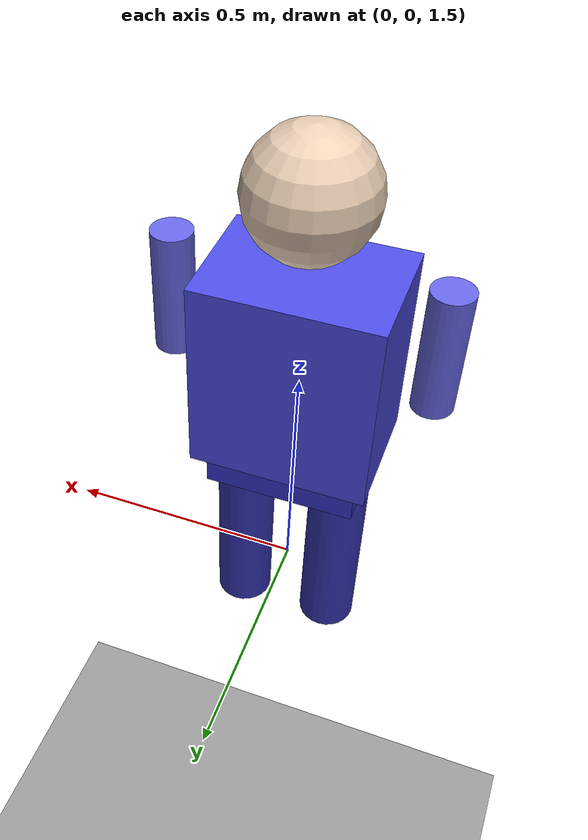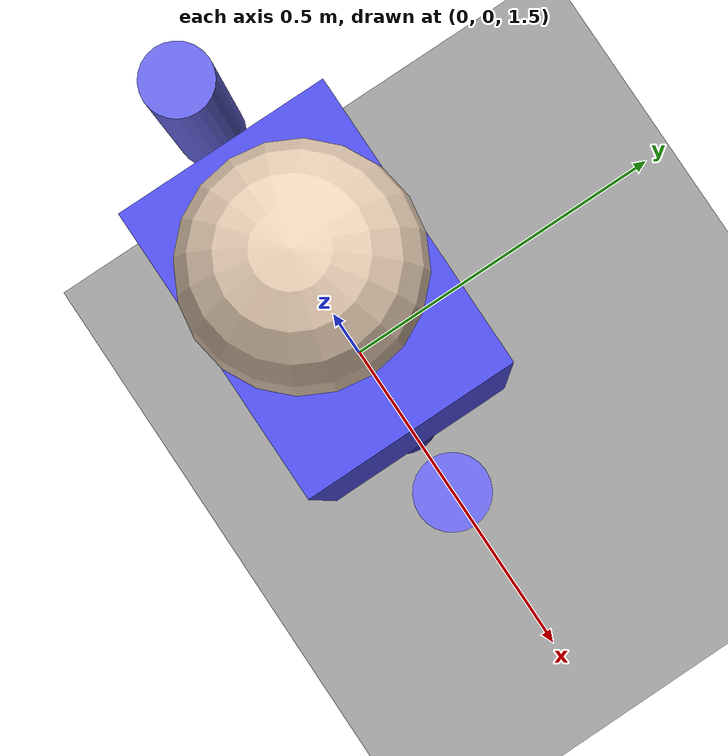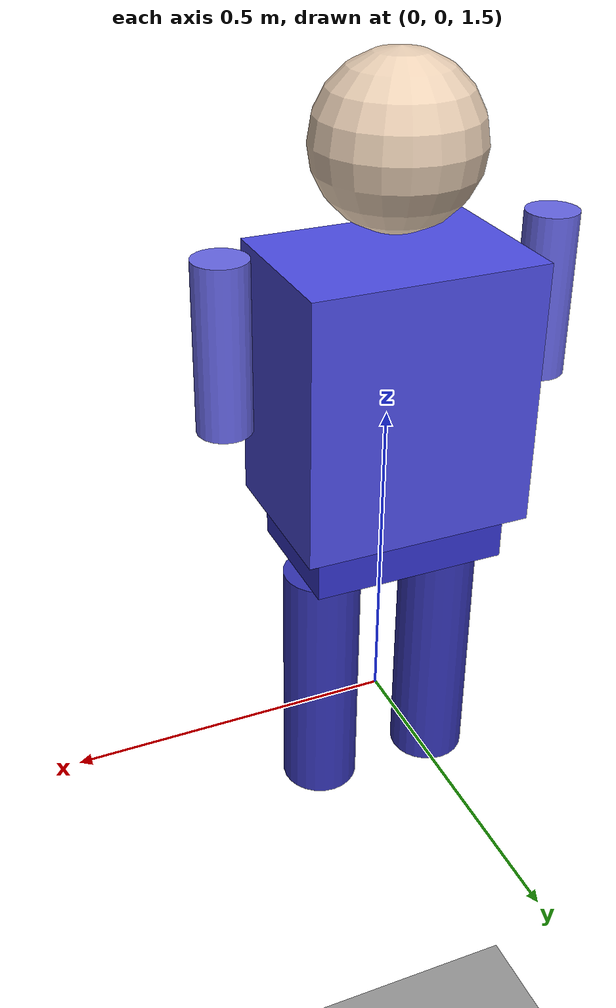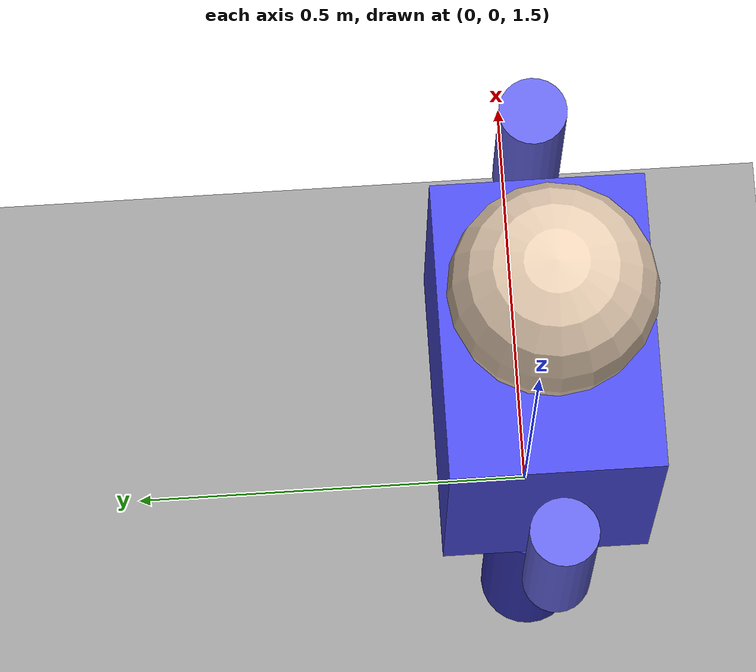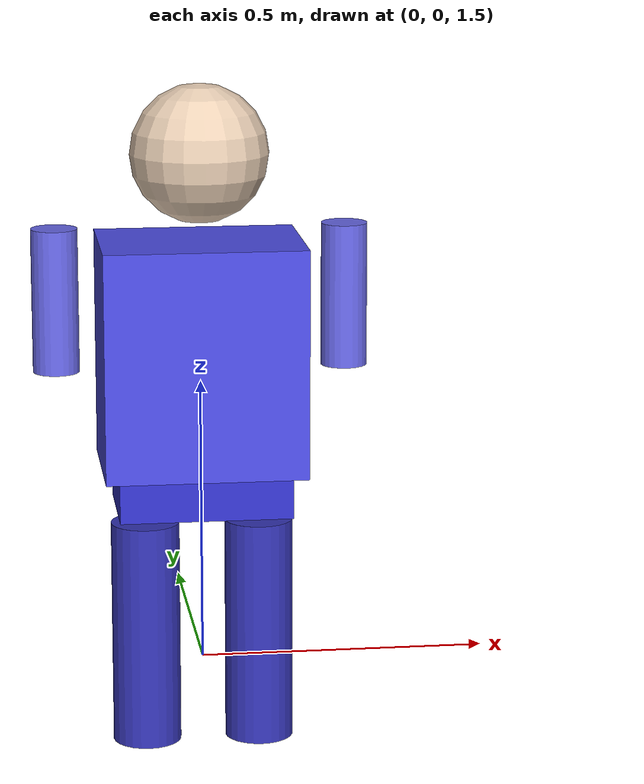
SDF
<?xml version="1.0" ?>
<sdf version="1.10">
  <world name="humanoid_world">

    <physics type="ode">
      <max_step_size>0.001</max_step_size>
      <real_time_factor>1.0</real_time_factor>
      <real_time_update_rate>1000</real_time_update_rate>
      <ode>
        <solver>
          <type>quick</type>
          <iters>100</iters>  <!-- Higher iterations for humanoid stability -->
          <sor>1.3</sor>
        </solver>
        <constraints>
          <cfm>0</cfm>
          <erp>0.2</erp>
          <contact_max_correcting_vel>100</contact_max_correcting_vel>
          <contact_surface_layer>0.001</contact_surface_layer>
        </constraints>
      </ode>
    </physics>

    <gravity>0 0 -9.81</gravity>

    <!-- Lighting -->
    <light type="directional" name="sun">
      <cast_shadows>true</cast_shadows>
      <pose>0 0 10 0 0 0</pose>
      <diffuse>0.8 0.8 0.8 1</diffuse>
      <specular>0.2 0.2 0.2 1</specular>
      <direction>-0.5 0.1 -0.9</direction>
    </light>

    <!-- Ambient light for better visibility -->
    <light type="point" name="ambient_1">
      <pose>3 3 5 0 0 0</pose>
      <diffuse>0.3 0.3 0.3 1</diffuse>
      <specular>0.1 0.1 0.1 1</specular>
      <attenuation>
        <range>20</range>
        <constant>0.5</constant>
        <linear>0.01</linear>
        <quadratic>0.001</quadratic>
      </attenuation>
    </light>

    <!-- Ground Plane with friction for walking -->
    <model name="ground_plane">
      <static>true</static>
      <link name="link">
        <collision name="collision">
          <geometry>
            <plane>
              <normal>0 0 1</normal>
              <size>100 100</size>
            </plane>
          </geometry>
          <surface>
            <friction>
              <ode>
                <mu>1.0</mu>   <!-- Good friction for walking -->
                <mu2>1.0</mu2>
              </ode>
            </friction>
            <contact>
              <ode>
                <kp>1e6</kp>   <!-- Stiff contact for stable footing -->
                <kd>100</kd>
                <max_vel>1.0</max_vel>
                <min_depth>0.001</min_depth>
              </ode>
            </contact>
          </surface>
        </collision>
        <visual name="visual">
          <geometry>
            <plane>
              <normal>0 0 1</normal>
              <size>100 100</size>
            </plane>
          </geometry>
          <material>
            <ambient>0.6 0.6 0.6 1</ambient>
            <diffuse>0.6 0.6 0.6 1</diffuse>
          </material>
        </visual>
      </link>
    </model>

    <include>
      <uri>model://humanoid_robot</uri>
      <name>humanoid</name>
      <!-- Start position: standing on ground, facing +X direction -->
      <pose>0 0 0.95 0 0 0</pose>
    </include>

    <!--
      Optional: Obstacle course for testing
      Uncomment these to add obstacles for the robot to navigate
    -->

    <!-- Low hurdle -->

    <!-- Ramp -->

    <!-- Scene configuration -->
    <scene>
      <ambient>0.4 0.4 0.4 1</ambient>
      <background>0.7 0.85 1.0 1</background>  <!-- Sky blue background -->
      <shadows>true</shadows>
      <grid>true</grid>
    </scene>

    <!--
      Plugins for simulation control
      These are loaded automatically in Gazebo Harmonic
    -->

    <!-- Physics system -->
    <plugin
      filename="gz-sim-physics-system"
      name="gz::sim::systems::Physics">
    </plugin>

    <!-- User commands (apply forces, spawn models) -->
    <plugin
      filename="gz-sim-user-commands-system"
      name="gz::sim::systems::UserCommands">
    </plugin>

    <!-- Scene broadcaster (for visualization) -->
    <plugin
      filename="gz-sim-scene-broadcaster-system"
      name="gz::sim::systems::SceneBroadcaster">
    </plugin>

  </world>
</sdf>

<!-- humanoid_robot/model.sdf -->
<sdf version="1.10">
  <model name="humanoid_robot">
    <static>false</static>

    <!-- Base/Pelvis Link -->
    <link name="pelvis">
      <pose>0 0 0.9 0 0 0</pose>
      <inertial>
        <mass>10.0</mass>
        <inertia>
          <ixx>0.1</ixx>
          <ixy>0</ixy>
          <ixz>0</ixz>
          <iyy>0.1</iyy>
          <iyz>0</iyz>
          <izz>0.1</izz>
        </inertia>
      </inertial>
      <visual name="pelvis_visual">
        <geometry>
          <box>
            <size>0.3 0.2 0.15</size>
          </box>
        </geometry>
        <material>
          <ambient>0.2 0.2 0.8 1</ambient>
          <diffuse>0.2 0.2 0.8 1</diffuse>
        </material>
      </visual>
      <collision name="pelvis_collision">
        <geometry>
          <box>
            <size>0.3 0.2 0.15</size>
          </box>
        </geometry>
      </collision>
    </link>

    <!-- Torso Link -->
    <link name="torso">
      <pose>0 0 1.1 0 0 0</pose>
      <inertial>
        <mass>15.0</mass>
        <inertia>
          <ixx>0.2</ixx>
          <ixy>0</ixy>
          <ixz>0</ixz>
          <iyy>0.2</iyy>
          <iyz>0</iyz>
          <izz>0.15</izz>
        </inertia>
      </inertial>
      <visual name="torso_visual">
        <geometry>
          <box>
            <size>0.35 0.25 0.4</size>
          </box>
        </geometry>
        <material>
          <ambient>0.3 0.3 0.9 1</ambient>
          <diffuse>0.3 0.3 0.9 1</diffuse>
        </material>
      </visual>
      <collision name="torso_collision">
        <geometry>
          <box>
            <size>0.35 0.25 0.4</size>
          </box>
        </geometry>
      </collision>
    </link>

    <!-- Head Link -->
    <link name="head">
      <pose>0 0 1.45 0 0 0</pose>
      <inertial>
        <mass>5.0</mass>
        <inertia>
          <ixx>0.03</ixx>
          <ixy>0</ixy>
          <ixz>0</ixz>
          <iyy>0.03</iyy>
          <iyz>0</iyz>
          <izz>0.03</izz>
        </inertia>
      </inertial>
      <visual name="head_visual">
        <geometry>
          <sphere>
            <radius>0.12</radius>
          </sphere>
        </geometry>
        <material>
          <ambient>0.9 0.8 0.7 1</ambient>
          <diffuse>0.9 0.8 0.7 1</diffuse>
        </material>
      </visual>
      <collision name="head_collision">
        <geometry>
          <sphere>
            <radius>0.12</radius>
          </sphere>
        </geometry>
      </collision>
    </link>

    <!-- Left Upper Arm -->
    <link name="left_upper_arm">
      <pose>0.25 0 1.2 0 0 0</pose>
      <inertial>
        <mass>2.0</mass>
        <inertia>
          <ixx>0.01</ixx>
          <ixy>0</ixy>
          <ixz>0</ixz>
          <iyy>0.01</iyy>
          <iyz>0</iyz>
          <izz>0.005</izz>
        </inertia>
      </inertial>
      <visual name="left_upper_arm_visual">
        <geometry>
          <cylinder>
            <radius>0.04</radius>
            <length>0.25</length>
          </cylinder>
        </geometry>
        <material>
          <ambient>0.4 0.4 0.9 1</ambient>
          <diffuse>0.4 0.4 0.9 1</diffuse>
        </material>
      </visual>
      <collision name="left_upper_arm_collision">
        <geometry>
          <cylinder>
            <radius>0.04</radius>
            <length>0.25</length>
          </cylinder>
        </geometry>
      </collision>
    </link>

    <!-- Right Upper Arm -->
    <link name="right_upper_arm">
      <pose>-0.25 0 1.2 0 0 0</pose>
      <inertial>
        <mass>2.0</mass>
        <inertia>
          <ixx>0.01</ixx>
          <ixy>0</ixy>
          <ixz>0</ixz>
          <iyy>0.01</iyy>
          <iyz>0</iyz>
          <izz>0.005</izz>
        </inertia>
      </inertial>
      <visual name="right_upper_arm_visual">
        <geometry>
          <cylinder>
            <radius>0.04</radius>
            <length>0.25</length>
          </cylinder>
        </geometry>
        <material>
          <ambient>0.4 0.4 0.9 1</ambient>
          <diffuse>0.4 0.4 0.9 1</diffuse>
        </material>
      </visual>
      <collision name="right_upper_arm_collision">
        <geometry>
          <cylinder>
            <radius>0.04</radius>
            <length>0.25</length>
          </cylinder>
        </geometry>
      </collision>
    </link>

    <!-- Left Upper Leg -->
    <link name="left_upper_leg">
      <pose>0.1 0 0.6 0 0 0</pose>
      <inertial>
        <mass>5.0</mass>
        <inertia>
          <ixx>0.05</ixx>
          <ixy>0</ixy>
          <ixz>0</ixz>
          <iyy>0.05</iyy>
          <iyz>0</iyz>
          <izz>0.01</izz>
        </inertia>
      </inertial>
      <visual name="left_upper_leg_visual">
        <geometry>
          <cylinder>
            <radius>0.06</radius>
            <length>0.4</length>
          </cylinder>
        </geometry>
        <material>
          <ambient>0.2 0.2 0.7 1</ambient>
          <diffuse>0.2 0.2 0.7 1</diffuse>
        </material>
      </visual>
      <collision name="left_upper_leg_collision">
        <geometry>
          <cylinder>
            <radius>0.06</radius>
            <length>0.4</length>
          </cylinder>
        </geometry>
      </collision>
    </link>

    <!-- Right Upper Leg -->
    <link name="right_upper_leg">
      <pose>-0.1 0 0.6 0 0 0</pose>
      <inertial>
        <mass>5.0</mass>
        <inertia>
          <ixx>0.05</ixx>
          <ixy>0</ixy>
          <ixz>0</ixz>
          <iyy>0.05</iyy>
          <iyz>0</iyz>
          <izz>0.01</izz>
        </inertia>
      </inertial>
      <visual name="right_upper_leg_visual">
        <geometry>
          <cylinder>
            <radius>0.06</radius>
            <length>0.4</length>
          </cylinder>
        </geometry>
        <material>
          <ambient>0.2 0.2 0.7 1</ambient>
          <diffuse>0.2 0.2 0.7 1</diffuse>
        </material>
      </visual>
      <collision name="right_upper_leg_collision">
        <geometry>
          <cylinder>
            <radius>0.06</radius>
            <length>0.4</length>
          </cylinder>
        </geometry>
      </collision>
    </link>

    <!-- Joints -->
    <joint name="pelvis_to_torso" type="fixed">
      <parent>pelvis</parent>
      <child>torso</child>
    </joint>

    <joint name="torso_to_head" type="revolute">
      <parent>torso</parent>
      <child>head</child>
      <axis>
        <xyz>0 0 1</xyz>
        <limit>
          <lower>-1.57</lower>
          <upper>1.57</upper>
        </limit>
      </axis>
    </joint>

    <joint name="left_shoulder" type="revolute">
      <parent>torso</parent>
      <child>left_upper_arm</child>
      <axis>
        <xyz>1 0 0</xyz>
        <limit>
          <lower>-3.14</lower>
          <upper>3.14</upper>
        </limit>
      </axis>
    </joint>

    <joint name="right_shoulder" type="revolute">
      <parent>torso</parent>
      <child>right_upper_arm</child>
      <axis>
        <xyz>1 0 0</xyz>
        <limit>
          <lower>-3.14</lower>
          <upper>3.14</upper>
        </limit>
      </axis>
    </joint>

    <joint name="left_hip" type="revolute">
      <parent>pelvis</parent>
      <child>left_upper_leg</child>
      <axis>
        <xyz>1 0 0</xyz>
        <limit>
          <lower>-1.57</lower>
          <upper>1.57</upper>
        </limit>
      </axis>
    </joint>

    <joint name="right_hip" type="revolute">
      <parent>pelvis</parent>
      <child>right_upper_leg</child>
      <axis>
        <xyz>1 0 0</xyz>
        <limit>
          <lower>-1.57</lower>
          <upper>1.57</upper>
        </limit>
      </axis>
    </joint>

  </model>
</sdf>
